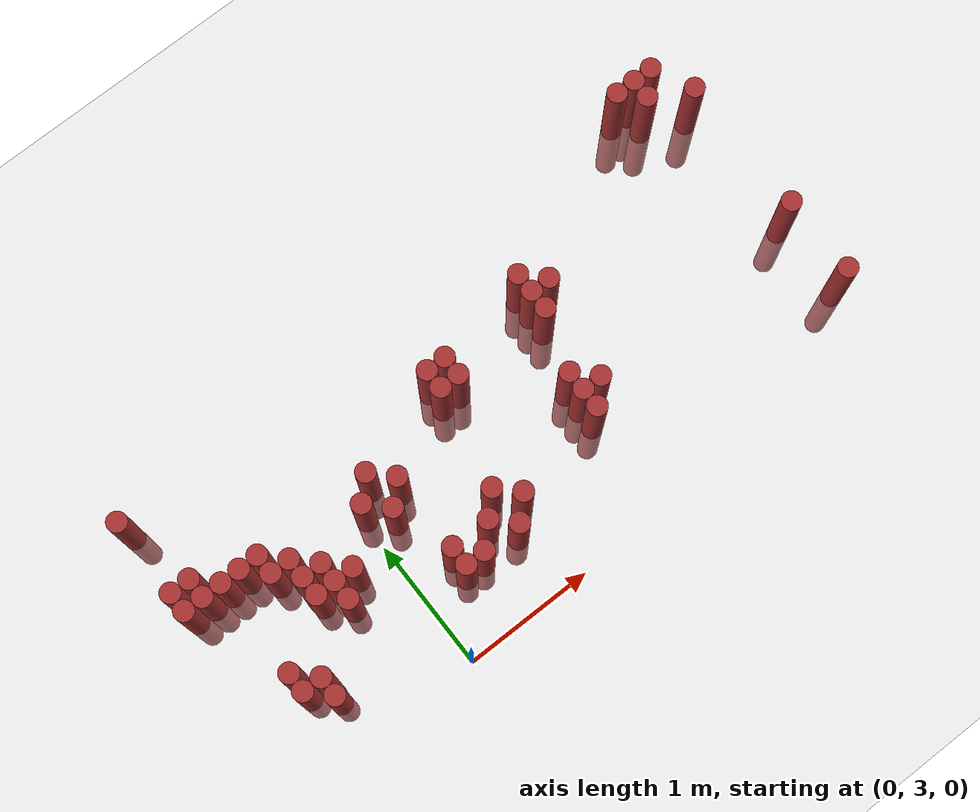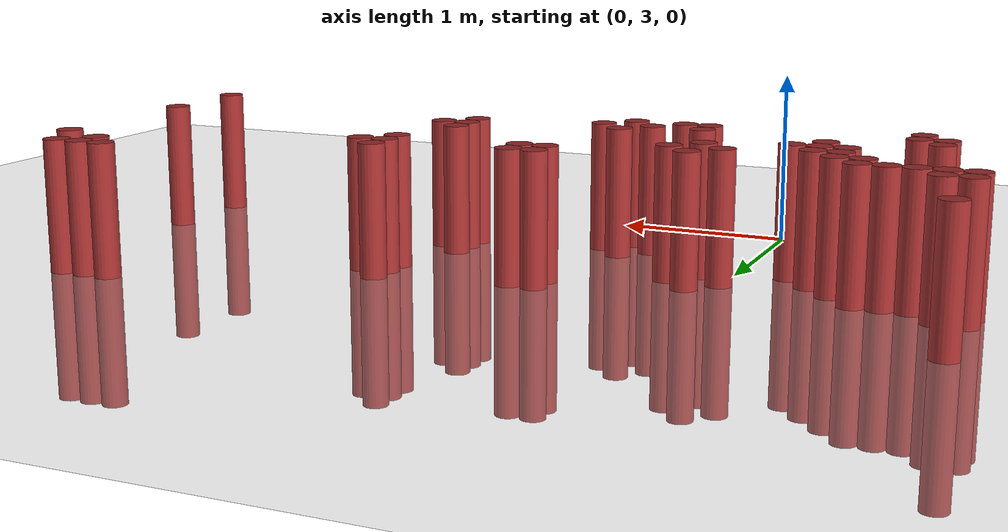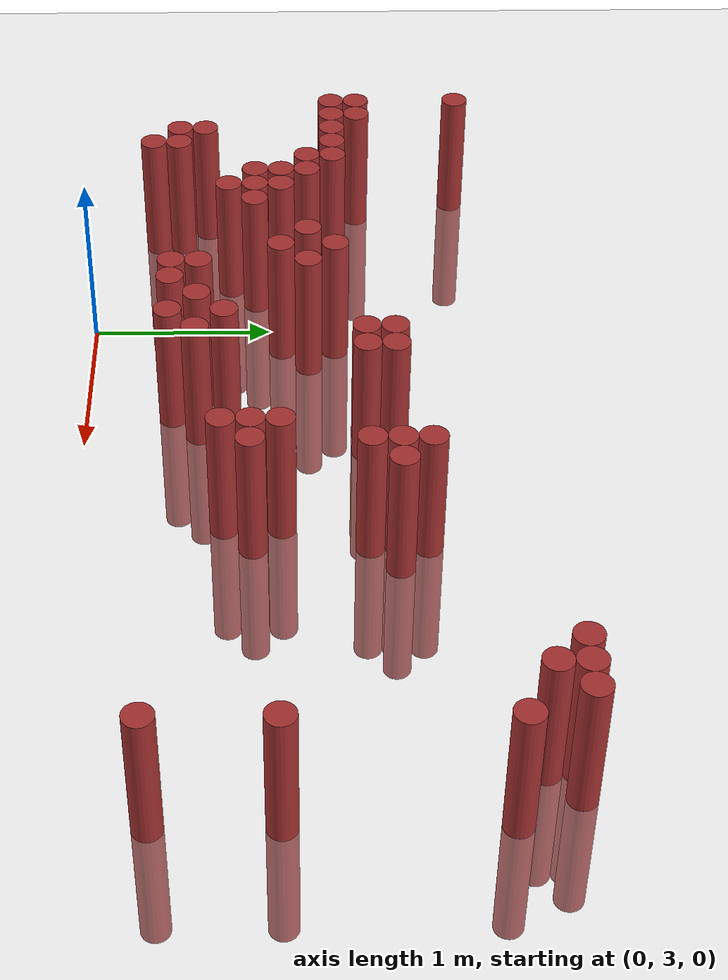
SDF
<sdf version="1.6">
 <world name="default">
  <model name="ground_plane">
   <static>1</static>
   <link name="link">
    <collision name="collision">
     <geometry><plane><normal>0 0 1</normal><size>100 100</size></plane></geometry>
     <surface><friction><ode><mu>100</mu><mu2>50</mu2></ode></friction></surface>
    </collision>
    <visual name="visual">
     <cast_shadows>0</cast_shadows>
     <geometry><plane><normal>0 0 1</normal><size>100 100</size></plane></geometry>
     <material>
      <script><uri>file://media/materials/scripts/gazebo.material</uri><name>Gazebo/Grey</name></script>
     </material>
    </visual>
   </link>
  </model>
  <model name="unit_cylinder_319">
   <static>1</static>
   <pose>-1.325000 4.375000 0.000000 0.000000 0.000000 0.000000</pose>
   <link name="link">
    <inertial>
     <mass>1</mass>
     <inertia><ixx>0.145833</ixx><ixy>0</ixy><ixz>0</ixz><iyy>0.145833</iyy><iyz>0</iyz><izz>0.125</izz></inertia>
    </inertial>
    <collision name="collision">
     <geometry><cylinder><radius>0.075000</radius><length>1.5</length></cylinder></geometry>
    </collision>
    <visual name="visual">
     <geometry><cylinder><radius>0.075000</radius><length>1.5</length></cylinder></geometry>
     <material>
      <ambient>0.648000 0.192000 0.192000 1</ambient>
      <diffuse>0.648000 0.192000 0.192000 1</diffuse>
     </material>
     <material>
      <script><name>Gazebo/Grey</name><uri>file://media/materials/scripts/gazebo.material</uri></script>
     </material>
    </visual>
   </link>
  </model>
  <model name="unit_cylinder_320">
   <static>1</static>
   <pose>-1.325000 4.525000 0.000000 0.000000 0.000000 0.000000</pose>
   <link name="link">
    <inertial>
     <mass>1</mass>
     <inertia><ixx>0.145833</ixx><ixy>0</ixy><ixz>0</ixz><iyy>0.145833</iyy><iyz>0</iyz><izz>0.125</izz></inertia>
    </inertial>
    <collision name="collision">
     <geometry><cylinder><radius>0.075000</radius><length>1.5</length></cylinder></geometry>
    </collision>
    <visual name="visual">
     <geometry><cylinder><radius>0.075000</radius><length>1.5</length></cylinder></geometry>
     <material>
      <ambient>0.648000 0.192000 0.192000 1</ambient>
      <diffuse>0.648000 0.192000 0.192000 1</diffuse>
     </material>
     <material>
      <script><name>Gazebo/Grey</name><uri>file://media/materials/scripts/gazebo.material</uri></script>
     </material>
    </visual>
   </link>
  </model>
  <model name="unit_cylinder_321">
   <static>1</static>
   <pose>-1.325000 5.125000 0.000000 0.000000 0.000000 0.000000</pose>
   <link name="link">
    <inertial>
     <mass>1</mass>
     <inertia><ixx>0.145833</ixx><ixy>0</ixy><ixz>0</ixz><iyy>0.145833</iyy><iyz>0</iyz><izz>0.125</izz></inertia>
    </inertial>
    <collision name="collision">
     <geometry><cylinder><radius>0.075000</radius><length>1.5</length></cylinder></geometry>
    </collision>
    <visual name="visual">
     <geometry><cylinder><radius>0.075000</radius><length>1.5</length></cylinder></geometry>
     <material>
      <ambient>0.648000 0.192000 0.192000 1</ambient>
      <diffuse>0.648000 0.192000 0.192000 1</diffuse>
     </material>
     <material>
      <script><name>Gazebo/Grey</name><uri>file://media/materials/scripts/gazebo.material</uri></script>
     </material>
    </visual>
   </link>
  </model>
  <model name="unit_cylinder_322">
   <static>1</static>
   <pose>-1.175000 4.375000 0.000000 0.000000 0.000000 0.000000</pose>
   <link name="link">
    <inertial>
     <mass>1</mass>
     <inertia><ixx>0.145833</ixx><ixy>0</ixy><ixz>0</ixz><iyy>0.145833</iyy><iyz>0</iyz><izz>0.125</izz></inertia>
    </inertial>
    <collision name="collision">
     <geometry><cylinder><radius>0.075000</radius><length>1.5</length></cylinder></geometry>
    </collision>
    <visual name="visual">
     <geometry><cylinder><radius>0.075000</radius><length>1.5</length></cylinder></geometry>
     <material>
      <ambient>0.648000 0.192000 0.192000 1</ambient>
      <diffuse>0.648000 0.192000 0.192000 1</diffuse>
     </material>
     <material>
      <script><name>Gazebo/Grey</name><uri>file://media/materials/scripts/gazebo.material</uri></script>
     </material>
    </visual>
   </link>
  </model>
  <model name="unit_cylinder_323">
   <static>1</static>
   <pose>-1.175000 4.525000 0.000000 0.000000 0.000000 0.000000</pose>
   <link name="link">
    <inertial>
     <mass>1</mass>
     <inertia><ixx>0.145833</ixx><ixy>0</ixy><ixz>0</ixz><iyy>0.145833</iyy><iyz>0</iyz><izz>0.125</izz></inertia>
    </inertial>
    <collision name="collision">
     <geometry><cylinder><radius>0.075000</radius><length>1.5</length></cylinder></geometry>
    </collision>
    <visual name="visual">
     <geometry><cylinder><radius>0.075000</radius><length>1.5</length></cylinder></geometry>
     <material>
      <ambient>0.648000 0.192000 0.192000 1</ambient>
      <diffuse>0.648000 0.192000 0.192000 1</diffuse>
     </material>
     <material>
      <script><name>Gazebo/Grey</name><uri>file://media/materials/scripts/gazebo.material</uri></script>
     </material>
    </visual>
   </link>
  </model>
  <model name="unit_cylinder_324">
   <static>1</static>
   <pose>-1.025000 3.475000 0.000000 0.000000 0.000000 0.000000</pose>
   <link name="link">
    <inertial>
     <mass>1</mass>
     <inertia><ixx>0.145833</ixx><ixy>0</ixy><ixz>0</ixz><iyy>0.145833</iyy><iyz>0</iyz><izz>0.125</izz></inertia>
    </inertial>
    <collision name="collision">
     <geometry><cylinder><radius>0.075000</radius><length>1.5</length></cylinder></geometry>
    </collision>
    <visual name="visual">
     <geometry><cylinder><radius>0.075000</radius><length>1.5</length></cylinder></geometry>
     <material>
      <ambient>0.648000 0.192000 0.192000 1</ambient>
      <diffuse>0.648000 0.192000 0.192000 1</diffuse>
     </material>
     <material>
      <script><name>Gazebo/Grey</name><uri>file://media/materials/scripts/gazebo.material</uri></script>
     </material>
    </visual>
   </link>
  </model>
  <model name="unit_cylinder_325">
   <static>1</static>
   <pose>-1.025000 3.625000 0.000000 0.000000 0.000000 0.000000</pose>
   <link name="link">
    <inertial>
     <mass>1</mass>
     <inertia><ixx>0.145833</ixx><ixy>0</ixy><ixz>0</ixz><iyy>0.145833</iyy><iyz>0</iyz><izz>0.125</izz></inertia>
    </inertial>
    <collision name="collision">
     <geometry><cylinder><radius>0.075000</radius><length>1.5</length></cylinder></geometry>
    </collision>
    <visual name="visual">
     <geometry><cylinder><radius>0.075000</radius><length>1.5</length></cylinder></geometry>
     <material>
      <ambient>0.648000 0.192000 0.192000 1</ambient>
      <diffuse>0.648000 0.192000 0.192000 1</diffuse>
     </material>
     <material>
      <script><name>Gazebo/Grey</name><uri>file://media/materials/scripts/gazebo.material</uri></script>
     </material>
    </visual>
   </link>
  </model>
  <model name="unit_cylinder_326">
   <static>1</static>
   <pose>-1.025000 4.375000 0.000000 0.000000 0.000000 0.000000</pose>
   <link name="link">
    <inertial>
     <mass>1</mass>
     <inertia><ixx>0.145833</ixx><ixy>0</ixy><ixz>0</ixz><iyy>0.145833</iyy><iyz>0</iyz><izz>0.125</izz></inertia>
    </inertial>
    <collision name="collision">
     <geometry><cylinder><radius>0.075000</radius><length>1.5</length></cylinder></geometry>
    </collision>
    <visual name="visual">
     <geometry><cylinder><radius>0.075000</radius><length>1.5</length></cylinder></geometry>
     <material>
      <ambient>0.648000 0.192000 0.192000 1</ambient>
      <diffuse>0.648000 0.192000 0.192000 1</diffuse>
     </material>
     <material>
      <script><name>Gazebo/Grey</name><uri>file://media/materials/scripts/gazebo.material</uri></script>
     </material>
    </visual>
   </link>
  </model>
  <model name="unit_cylinder_327">
   <static>1</static>
   <pose>-0.875000 3.325000 0.000000 0.000000 0.000000 0.000000</pose>
   <link name="link">
    <inertial>
     <mass>1</mass>
     <inertia><ixx>0.145833</ixx><ixy>0</ixy><ixz>0</ixz><iyy>0.145833</iyy><iyz>0</iyz><izz>0.125</izz></inertia>
    </inertial>
    <collision name="collision">
     <geometry><cylinder><radius>0.075000</radius><length>1.5</length></cylinder></geometry>
    </collision>
    <visual name="visual">
     <geometry><cylinder><radius>0.075000</radius><length>1.5</length></cylinder></geometry>
     <material>
      <ambient>0.648000 0.192000 0.192000 1</ambient>
      <diffuse>0.648000 0.192000 0.192000 1</diffuse>
     </material>
     <material>
      <script><name>Gazebo/Grey</name><uri>file://media/materials/scripts/gazebo.material</uri></script>
     </material>
    </visual>
   </link>
  </model>
  <model name="unit_cylinder_328">
   <static>1</static>
   <pose>-0.875000 3.475000 0.000000 0.000000 0.000000 0.000000</pose>
   <link name="link">
    <inertial>
     <mass>1</mass>
     <inertia><ixx>0.145833</ixx><ixy>0</ixy><ixz>0</ixz><iyy>0.145833</iyy><iyz>0</iyz><izz>0.125</izz></inertia>
    </inertial>
    <collision name="collision">
     <geometry><cylinder><radius>0.075000</radius><length>1.5</length></cylinder></geometry>
    </collision>
    <visual name="visual">
     <geometry><cylinder><radius>0.075000</radius><length>1.5</length></cylinder></geometry>
     <material>
      <ambient>0.648000 0.192000 0.192000 1</ambient>
      <diffuse>0.648000 0.192000 0.192000 1</diffuse>
     </material>
     <material>
      <script><name>Gazebo/Grey</name><uri>file://media/materials/scripts/gazebo.material</uri></script>
     </material>
    </visual>
   </link>
  </model>
  <model name="unit_cylinder_329">
   <static>1</static>
   <pose>-0.875000 4.375000 0.000000 0.000000 0.000000 0.000000</pose>
   <link name="link">
    <inertial>
     <mass>1</mass>
     <inertia><ixx>0.145833</ixx><ixy>0</ixy><ixz>0</ixz><iyy>0.145833</iyy><iyz>0</iyz><izz>0.125</izz></inertia>
    </inertial>
    <collision name="collision">
     <geometry><cylinder><radius>0.075000</radius><length>1.5</length></cylinder></geometry>
    </collision>
    <visual name="visual">
     <geometry><cylinder><radius>0.075000</radius><length>1.5</length></cylinder></geometry>
     <material>
      <ambient>0.648000 0.192000 0.192000 1</ambient>
      <diffuse>0.648000 0.192000 0.192000 1</diffuse>
     </material>
     <material>
      <script><name>Gazebo/Grey</name><uri>file://media/materials/scripts/gazebo.material</uri></script>
     </material>
    </visual>
   </link>
  </model>
  <model name="unit_cylinder_330">
   <static>1</static>
   <pose>-0.725000 4.225000 0.000000 0.000000 0.000000 0.000000</pose>
   <link name="link">
    <inertial>
     <mass>1</mass>
     <inertia><ixx>0.145833</ixx><ixy>0</ixy><ixz>0</ixz><iyy>0.145833</iyy><iyz>0</iyz><izz>0.125</izz></inertia>
    </inertial>
    <collision name="collision">
     <geometry><cylinder><radius>0.075000</radius><length>1.5</length></cylinder></geometry>
    </collision>
    <visual name="visual">
     <geometry><cylinder><radius>0.075000</radius><length>1.5</length></cylinder></geometry>
     <material>
      <ambient>0.648000 0.192000 0.192000 1</ambient>
      <diffuse>0.648000 0.192000 0.192000 1</diffuse>
     </material>
     <material>
      <script><name>Gazebo/Grey</name><uri>file://media/materials/scripts/gazebo.material</uri></script>
     </material>
    </visual>
   </link>
  </model>
  <model name="unit_cylinder_331">
   <static>1</static>
   <pose>-0.725000 4.375000 0.000000 0.000000 0.000000 0.000000</pose>
   <link name="link">
    <inertial>
     <mass>1</mass>
     <inertia><ixx>0.145833</ixx><ixy>0</ixy><ixz>0</ixz><iyy>0.145833</iyy><iyz>0</iyz><izz>0.125</izz></inertia>
    </inertial>
    <collision name="collision">
     <geometry><cylinder><radius>0.075000</radius><length>1.5</length></cylinder></geometry>
    </collision>
    <visual name="visual">
     <geometry><cylinder><radius>0.075000</radius><length>1.5</length></cylinder></geometry>
     <material>
      <ambient>0.648000 0.192000 0.192000 1</ambient>
      <diffuse>0.648000 0.192000 0.192000 1</diffuse>
     </material>
     <material>
      <script><name>Gazebo/Grey</name><uri>file://media/materials/scripts/gazebo.material</uri></script>
     </material>
    </visual>
   </link>
  </model>
  <model name="unit_cylinder_333">
   <static>1</static>
   <pose>-0.575000 3.925000 0.000000 0.000000 0.000000 0.000000</pose>
   <link name="link">
    <inertial>
     <mass>1</mass>
     <inertia><ixx>0.145833</ixx><ixy>0</ixy><ixz>0</ixz><iyy>0.145833</iyy><iyz>0</iyz><izz>0.125</izz></inertia>
    </inertial>
    <collision name="collision">
     <geometry><cylinder><radius>0.075000</radius><length>1.5</length></cylinder></geometry>
    </collision>
    <visual name="visual">
     <geometry><cylinder><radius>0.075000</radius><length>1.5</length></cylinder></geometry>
     <material>
      <ambient>0.648000 0.192000 0.192000 1</ambient>
      <diffuse>0.648000 0.192000 0.192000 1</diffuse>
     </material>
     <material>
      <script><name>Gazebo/Grey</name><uri>file://media/materials/scripts/gazebo.material</uri></script>
     </material>
    </visual>
   </link>
  </model>
  <model name="unit_cylinder_334">
   <static>1</static>
   <pose>-0.575000 4.075000 0.000000 0.000000 0.000000 0.000000</pose>
   <link name="link">
    <inertial>
     <mass>1</mass>
     <inertia><ixx>0.145833</ixx><ixy>0</ixy><ixz>0</ixz><iyy>0.145833</iyy><iyz>0</iyz><izz>0.125</izz></inertia>
    </inertial>
    <collision name="collision">
     <geometry><cylinder><radius>0.075000</radius><length>1.5</length></cylinder></geometry>
    </collision>
    <visual name="visual">
     <geometry><cylinder><radius>0.075000</radius><length>1.5</length></cylinder></geometry>
     <material>
      <ambient>0.648000 0.192000 0.192000 1</ambient>
      <diffuse>0.648000 0.192000 0.192000 1</diffuse>
     </material>
     <material>
      <script><name>Gazebo/Grey</name><uri>file://media/materials/scripts/gazebo.material</uri></script>
     </material>
    </visual>
   </link>
  </model>
  <model name="unit_cylinder_335">
   <static>1</static>
   <pose>-0.575000 4.225000 0.000000 0.000000 0.000000 0.000000</pose>
   <link name="link">
    <inertial>
     <mass>1</mass>
     <inertia><ixx>0.145833</ixx><ixy>0</ixy><ixz>0</ixz><iyy>0.145833</iyy><iyz>0</iyz><izz>0.125</izz></inertia>
    </inertial>
    <collision name="collision">
     <geometry><cylinder><radius>0.075000</radius><length>1.5</length></cylinder></geometry>
    </collision>
    <visual name="visual">
     <geometry><cylinder><radius>0.075000</radius><length>1.5</length></cylinder></geometry>
     <material>
      <ambient>0.648000 0.192000 0.192000 1</ambient>
      <diffuse>0.648000 0.192000 0.192000 1</diffuse>
     </material>
     <material>
      <script><name>Gazebo/Grey</name><uri>file://media/materials/scripts/gazebo.material</uri></script>
     </material>
    </visual>
   </link>
  </model>
  <model name="unit_cylinder_340">
   <static>1</static>
   <pose>-0.425000 3.775000 0.000000 0.000000 0.000000 0.000000</pose>
   <link name="link">
    <inertial>
     <mass>1</mass>
     <inertia><ixx>0.145833</ixx><ixy>0</ixy><ixz>0</ixz><iyy>0.145833</iyy><iyz>0</iyz><izz>0.125</izz></inertia>
    </inertial>
    <collision name="collision">
     <geometry><cylinder><radius>0.075000</radius><length>1.5</length></cylinder></geometry>
    </collision>
    <visual name="visual">
     <geometry><cylinder><radius>0.075000</radius><length>1.5</length></cylinder></geometry>
     <material>
      <ambient>0.648000 0.192000 0.192000 1</ambient>
      <diffuse>0.648000 0.192000 0.192000 1</diffuse>
     </material>
     <material>
      <script><name>Gazebo/Grey</name><uri>file://media/materials/scripts/gazebo.material</uri></script>
     </material>
    </visual>
   </link>
  </model>
  <model name="unit_cylinder_341">
   <static>1</static>
   <pose>-0.425000 3.925000 0.000000 0.000000 0.000000 0.000000</pose>
   <link name="link">
    <inertial>
     <mass>1</mass>
     <inertia><ixx>0.145833</ixx><ixy>0</ixy><ixz>0</ixz><iyy>0.145833</iyy><iyz>0</iyz><izz>0.125</izz></inertia>
    </inertial>
    <collision name="collision">
     <geometry><cylinder><radius>0.075000</radius><length>1.5</length></cylinder></geometry>
    </collision>
    <visual name="visual">
     <geometry><cylinder><radius>0.075000</radius><length>1.5</length></cylinder></geometry>
     <material>
      <ambient>0.648000 0.192000 0.192000 1</ambient>
      <diffuse>0.648000 0.192000 0.192000 1</diffuse>
     </material>
     <material>
      <script><name>Gazebo/Grey</name><uri>file://media/materials/scripts/gazebo.material</uri></script>
     </material>
    </visual>
   </link>
  </model>
  <model name="unit_cylinder_342">
   <static>1</static>
   <pose>-0.425000 4.075000 0.000000 0.000000 0.000000 0.000000</pose>
   <link name="link">
    <inertial>
     <mass>1</mass>
     <inertia><ixx>0.145833</ixx><ixy>0</ixy><ixz>0</ixz><iyy>0.145833</iyy><iyz>0</iyz><izz>0.125</izz></inertia>
    </inertial>
    <collision name="collision">
     <geometry><cylinder><radius>0.075000</radius><length>1.5</length></cylinder></geometry>
    </collision>
    <visual name="visual">
     <geometry><cylinder><radius>0.075000</radius><length>1.5</length></cylinder></geometry>
     <material>
      <ambient>0.648000 0.192000 0.192000 1</ambient>
      <diffuse>0.648000 0.192000 0.192000 1</diffuse>
     </material>
     <material>
      <script><name>Gazebo/Grey</name><uri>file://media/materials/scripts/gazebo.material</uri></script>
     </material>
    </visual>
   </link>
  </model>
  <model name="unit_cylinder_347">
   <static>1</static>
   <pose>-0.275000 3.925000 0.000000 0.000000 0.000000 0.000000</pose>
   <link name="link">
    <inertial>
     <mass>1</mass>
     <inertia><ixx>0.145833</ixx><ixy>0</ixy><ixz>0</ixz><iyy>0.145833</iyy><iyz>0</iyz><izz>0.125</izz></inertia>
    </inertial>
    <collision name="collision">
     <geometry><cylinder><radius>0.075000</radius><length>1.5</length></cylinder></geometry>
    </collision>
    <visual name="visual">
     <geometry><cylinder><radius>0.075000</radius><length>1.5</length></cylinder></geometry>
     <material>
      <ambient>0.648000 0.192000 0.192000 1</ambient>
      <diffuse>0.648000 0.192000 0.192000 1</diffuse>
     </material>
     <material>
      <script><name>Gazebo/Grey</name><uri>file://media/materials/scripts/gazebo.material</uri></script>
     </material>
    </visual>
   </link>
  </model>
  <model name="unit_cylinder_357">
   <static>1</static>
   <pose>0.025000 4.225000 0.000000 0.000000 0.000000 0.000000</pose>
   <link name="link">
    <inertial>
     <mass>1</mass>
     <inertia><ixx>0.145833</ixx><ixy>0</ixy><ixz>0</ixz><iyy>0.145833</iyy><iyz>0</iyz><izz>0.125</izz></inertia>
    </inertial>
    <collision name="collision">
     <geometry><cylinder><radius>0.075000</radius><length>1.5</length></cylinder></geometry>
    </collision>
    <visual name="visual">
     <geometry><cylinder><radius>0.075000</radius><length>1.5</length></cylinder></geometry>
     <material>
      <ambient>0.648000 0.192000 0.192000 1</ambient>
      <diffuse>0.648000 0.192000 0.192000 1</diffuse>
     </material>
     <material>
      <script><name>Gazebo/Grey</name><uri>file://media/materials/scripts/gazebo.material</uri></script>
     </material>
    </visual>
   </link>
  </model>
  <model name="unit_cylinder_360">
   <static>1</static>
   <pose>0.175000 4.075000 0.000000 0.000000 0.000000 0.000000</pose>
   <link name="link">
    <inertial>
     <mass>1</mass>
     <inertia><ixx>0.145833</ixx><ixy>0</ixy><ixz>0</ixz><iyy>0.145833</iyy><iyz>0</iyz><izz>0.125</izz></inertia>
    </inertial>
    <collision name="collision">
     <geometry><cylinder><radius>0.075000</radius><length>1.5</length></cylinder></geometry>
    </collision>
    <visual name="visual">
     <geometry><cylinder><radius>0.075000</radius><length>1.5</length></cylinder></geometry>
     <material>
      <ambient>0.648000 0.192000 0.192000 1</ambient>
      <diffuse>0.648000 0.192000 0.192000 1</diffuse>
     </material>
     <material>
      <script><name>Gazebo/Grey</name><uri>file://media/materials/scripts/gazebo.material</uri></script>
     </material>
    </visual>
   </link>
  </model>
  <model name="unit_cylinder_361">
   <static>1</static>
   <pose>0.175000 4.375000 0.000000 0.000000 0.000000 0.000000</pose>
   <link name="link">
    <inertial>
     <mass>1</mass>
     <inertia><ixx>0.145833</ixx><ixy>0</ixy><ixz>0</ixz><iyy>0.145833</iyy><iyz>0</iyz><izz>0.125</izz></inertia>
    </inertial>
    <collision name="collision">
     <geometry><cylinder><radius>0.075000</radius><length>1.5</length></cylinder></geometry>
    </collision>
    <visual name="visual">
     <geometry><cylinder><radius>0.075000</radius><length>1.5</length></cylinder></geometry>
     <material>
      <ambient>0.648000 0.192000 0.192000 1</ambient>
      <diffuse>0.648000 0.192000 0.192000 1</diffuse>
     </material>
     <material>
      <script><name>Gazebo/Grey</name><uri>file://media/materials/scripts/gazebo.material</uri></script>
     </material>
    </visual>
   </link>
  </model>
  <model name="unit_cylinder_364">
   <static>1</static>
   <pose>0.325000 3.475000 0.000000 0.000000 0.000000 0.000000</pose>
   <link name="link">
    <inertial>
     <mass>1</mass>
     <inertia><ixx>0.145833</ixx><ixy>0</ixy><ixz>0</ixz><iyy>0.145833</iyy><iyz>0</iyz><izz>0.125</izz></inertia>
    </inertial>
    <collision name="collision">
     <geometry><cylinder><radius>0.075000</radius><length>1.5</length></cylinder></geometry>
    </collision>
    <visual name="visual">
     <geometry><cylinder><radius>0.075000</radius><length>1.5</length></cylinder></geometry>
     <material>
      <ambient>0.648000 0.192000 0.192000 1</ambient>
      <diffuse>0.648000 0.192000 0.192000 1</diffuse>
     </material>
     <material>
      <script><name>Gazebo/Grey</name><uri>file://media/materials/scripts/gazebo.material</uri></script>
     </material>
    </visual>
   </link>
  </model>
  <model name="unit_cylinder_365">
   <static>1</static>
   <pose>0.325000 3.625000 0.000000 0.000000 0.000000 0.000000</pose>
   <link name="link">
    <inertial>
     <mass>1</mass>
     <inertia><ixx>0.145833</ixx><ixy>0</ixy><ixz>0</ixz><iyy>0.145833</iyy><iyz>0</iyz><izz>0.125</izz></inertia>
    </inertial>
    <collision name="collision">
     <geometry><cylinder><radius>0.075000</radius><length>1.5</length></cylinder></geometry>
    </collision>
    <visual name="visual">
     <geometry><cylinder><radius>0.075000</radius><length>1.5</length></cylinder></geometry>
     <material>
      <ambient>0.648000 0.192000 0.192000 1</ambient>
      <diffuse>0.648000 0.192000 0.192000 1</diffuse>
     </material>
     <material>
      <script><name>Gazebo/Grey</name><uri>file://media/materials/scripts/gazebo.material</uri></script>
     </material>
    </visual>
   </link>
  </model>
  <model name="unit_cylinder_366">
   <static>1</static>
   <pose>0.325000 4.225000 0.000000 0.000000 0.000000 0.000000</pose>
   <link name="link">
    <inertial>
     <mass>1</mass>
     <inertia><ixx>0.145833</ixx><ixy>0</ixy><ixz>0</ixz><iyy>0.145833</iyy><iyz>0</iyz><izz>0.125</izz></inertia>
    </inertial>
    <collision name="collision">
     <geometry><cylinder><radius>0.075000</radius><length>1.5</length></cylinder></geometry>
    </collision>
    <visual name="visual">
     <geometry><cylinder><radius>0.075000</radius><length>1.5</length></cylinder></geometry>
     <material>
      <ambient>0.648000 0.192000 0.192000 1</ambient>
      <diffuse>0.648000 0.192000 0.192000 1</diffuse>
     </material>
     <material>
      <script><name>Gazebo/Grey</name><uri>file://media/materials/scripts/gazebo.material</uri></script>
     </material>
    </visual>
   </link>
  </model>
  <model name="unit_cylinder_370">
   <static>1</static>
   <pose>0.475000 3.475000 0.000000 0.000000 0.000000 0.000000</pose>
   <link name="link">
    <inertial>
     <mass>1</mass>
     <inertia><ixx>0.145833</ixx><ixy>0</ixy><ixz>0</ixz><iyy>0.145833</iyy><iyz>0</iyz><izz>0.125</izz></inertia>
    </inertial>
    <collision name="collision">
     <geometry><cylinder><radius>0.075000</radius><length>1.5</length></cylinder></geometry>
    </collision>
    <visual name="visual">
     <geometry><cylinder><radius>0.075000</radius><length>1.5</length></cylinder></geometry>
     <material>
      <ambient>0.648000 0.192000 0.192000 1</ambient>
      <diffuse>0.648000 0.192000 0.192000 1</diffuse>
     </material>
     <material>
      <script><name>Gazebo/Grey</name><uri>file://media/materials/scripts/gazebo.material</uri></script>
     </material>
    </visual>
   </link>
  </model>
  <model name="unit_cylinder_374">
   <static>1</static>
   <pose>0.625000 3.625000 0.000000 0.000000 0.000000 0.000000</pose>
   <link name="link">
    <inertial>
     <mass>1</mass>
     <inertia><ixx>0.145833</ixx><ixy>0</ixy><ixz>0</ixz><iyy>0.145833</iyy><iyz>0</iyz><izz>0.125</izz></inertia>
    </inertial>
    <collision name="collision">
     <geometry><cylinder><radius>0.075000</radius><length>1.5</length></cylinder></geometry>
    </collision>
    <visual name="visual">
     <geometry><cylinder><radius>0.075000</radius><length>1.5</length></cylinder></geometry>
     <material>
      <ambient>0.648000 0.192000 0.192000 1</ambient>
      <diffuse>0.648000 0.192000 0.192000 1</diffuse>
     </material>
     <material>
      <script><name>Gazebo/Grey</name><uri>file://media/materials/scripts/gazebo.material</uri></script>
     </material>
    </visual>
   </link>
  </model>
  <model name="unit_cylinder_376">
   <static>1</static>
   <pose>0.775000 3.475000 0.000000 0.000000 0.000000 0.000000</pose>
   <link name="link">
    <inertial>
     <mass>1</mass>
     <inertia><ixx>0.145833</ixx><ixy>0</ixy><ixz>0</ixz><iyy>0.145833</iyy><iyz>0</iyz><izz>0.125</izz></inertia>
    </inertial>
    <collision name="collision">
     <geometry><cylinder><radius>0.075000</radius><length>1.5</length></cylinder></geometry>
    </collision>
    <visual name="visual">
     <geometry><cylinder><radius>0.075000</radius><length>1.5</length></cylinder></geometry>
     <material>
      <ambient>0.648000 0.192000 0.192000 1</ambient>
      <diffuse>0.648000 0.192000 0.192000 1</diffuse>
     </material>
     <material>
      <script><name>Gazebo/Grey</name><uri>file://media/materials/scripts/gazebo.material</uri></script>
     </material>
    </visual>
   </link>
  </model>
  <model name="unit_cylinder_377">
   <static>1</static>
   <pose>0.775000 3.775000 0.000000 0.000000 0.000000 0.000000</pose>
   <link name="link">
    <inertial>
     <mass>1</mass>
     <inertia><ixx>0.145833</ixx><ixy>0</ixy><ixz>0</ixz><iyy>0.145833</iyy><iyz>0</iyz><izz>0.125</izz></inertia>
    </inertial>
    <collision name="collision">
     <geometry><cylinder><radius>0.075000</radius><length>1.5</length></cylinder></geometry>
    </collision>
    <visual name="visual">
     <geometry><cylinder><radius>0.075000</radius><length>1.5</length></cylinder></geometry>
     <material>
      <ambient>0.648000 0.192000 0.192000 1</ambient>
      <diffuse>0.648000 0.192000 0.192000 1</diffuse>
     </material>
     <material>
      <script><name>Gazebo/Grey</name><uri>file://media/materials/scripts/gazebo.material</uri></script>
     </material>
    </visual>
   </link>
  </model>
  <model name="unit_cylinder_380">
   <static>1</static>
   <pose>0.925000 3.625000 0.000000 0.000000 0.000000 0.000000</pose>
   <link name="link">
    <inertial>
     <mass>1</mass>
     <inertia><ixx>0.145833</ixx><ixy>0</ixy><ixz>0</ixz><iyy>0.145833</iyy><iyz>0</iyz><izz>0.125</izz></inertia>
    </inertial>
    <collision name="collision">
     <geometry><cylinder><radius>0.075000</radius><length>1.5</length></cylinder></geometry>
    </collision>
    <visual name="visual">
     <geometry><cylinder><radius>0.075000</radius><length>1.5</length></cylinder></geometry>
     <material>
      <ambient>0.648000 0.192000 0.192000 1</ambient>
      <diffuse>0.648000 0.192000 0.192000 1</diffuse>
     </material>
     <material>
      <script><name>Gazebo/Grey</name><uri>file://media/materials/scripts/gazebo.material</uri></script>
     </material>
    </visual>
   </link>
  </model>
  <model name="unit_cylinder_381">
   <static>1</static>
   <pose>0.925000 4.525000 0.000000 0.000000 0.000000 0.000000</pose>
   <link name="link">
    <inertial>
     <mass>1</mass>
     <inertia><ixx>0.145833</ixx><ixy>0</ixy><ixz>0</ixz><iyy>0.145833</iyy><iyz>0</iyz><izz>0.125</izz></inertia>
    </inertial>
    <collision name="collision">
     <geometry><cylinder><radius>0.075000</radius><length>1.5</length></cylinder></geometry>
    </collision>
    <visual name="visual">
     <geometry><cylinder><radius>0.075000</radius><length>1.5</length></cylinder></geometry>
     <material>
      <ambient>0.648000 0.192000 0.192000 1</ambient>
      <diffuse>0.648000 0.192000 0.192000 1</diffuse>
     </material>
     <material>
      <script><name>Gazebo/Grey</name><uri>file://media/materials/scripts/gazebo.material</uri></script>
     </material>
    </visual>
   </link>
  </model>
  <model name="unit_cylinder_382">
   <static>1</static>
   <pose>0.925000 4.675000 0.000000 0.000000 0.000000 0.000000</pose>
   <link name="link">
    <inertial>
     <mass>1</mass>
     <inertia><ixx>0.145833</ixx><ixy>0</ixy><ixz>0</ixz><iyy>0.145833</iyy><iyz>0</iyz><izz>0.125</izz></inertia>
    </inertial>
    <collision name="collision">
     <geometry><cylinder><radius>0.075000</radius><length>1.5</length></cylinder></geometry>
    </collision>
    <visual name="visual">
     <geometry><cylinder><radius>0.075000</radius><length>1.5</length></cylinder></geometry>
     <material>
      <ambient>0.648000 0.192000 0.192000 1</ambient>
      <diffuse>0.648000 0.192000 0.192000 1</diffuse>
     </material>
     <material>
      <script><name>Gazebo/Grey</name><uri>file://media/materials/scripts/gazebo.material</uri></script>
     </material>
    </visual>
   </link>
  </model>
  <model name="unit_cylinder_383">
   <static>1</static>
   <pose>1.075000 4.525000 0.000000 0.000000 0.000000 0.000000</pose>
   <link name="link">
    <inertial>
     <mass>1</mass>
     <inertia><ixx>0.145833</ixx><ixy>0</ixy><ixz>0</ixz><iyy>0.145833</iyy><iyz>0</iyz><izz>0.125</izz></inertia>
    </inertial>
    <collision name="collision">
     <geometry><cylinder><radius>0.075000</radius><length>1.5</length></cylinder></geometry>
    </collision>
    <visual name="visual">
     <geometry><cylinder><radius>0.075000</radius><length>1.5</length></cylinder></geometry>
     <material>
      <ambient>0.648000 0.192000 0.192000 1</ambient>
      <diffuse>0.648000 0.192000 0.192000 1</diffuse>
     </material>
     <material>
      <script><name>Gazebo/Grey</name><uri>file://media/materials/scripts/gazebo.material</uri></script>
     </material>
    </visual>
   </link>
  </model>
  <model name="unit_cylinder_384">
   <static>1</static>
   <pose>1.075000 4.675000 0.000000 0.000000 0.000000 0.000000</pose>
   <link name="link">
    <inertial>
     <mass>1</mass>
     <inertia><ixx>0.145833</ixx><ixy>0</ixy><ixz>0</ixz><iyy>0.145833</iyy><iyz>0</iyz><izz>0.125</izz></inertia>
    </inertial>
    <collision name="collision">
     <geometry><cylinder><radius>0.075000</radius><length>1.5</length></cylinder></geometry>
    </collision>
    <visual name="visual">
     <geometry><cylinder><radius>0.075000</radius><length>1.5</length></cylinder></geometry>
     <material>
      <ambient>0.648000 0.192000 0.192000 1</ambient>
      <diffuse>0.648000 0.192000 0.192000 1</diffuse>
     </material>
     <material>
      <script><name>Gazebo/Grey</name><uri>file://media/materials/scripts/gazebo.material</uri></script>
     </material>
    </visual>
   </link>
  </model>
  <model name="unit_cylinder_393">
   <static>1</static>
   <pose>1.675000 3.775000 0.000000 0.000000 0.000000 0.000000</pose>
   <link name="link">
    <inertial>
     <mass>1</mass>
     <inertia><ixx>0.145833</ixx><ixy>0</ixy><ixz>0</ixz><iyy>0.145833</iyy><iyz>0</iyz><izz>0.125</izz></inertia>
    </inertial>
    <collision name="collision">
     <geometry><cylinder><radius>0.075000</radius><length>1.5</length></cylinder></geometry>
    </collision>
    <visual name="visual">
     <geometry><cylinder><radius>0.075000</radius><length>1.5</length></cylinder></geometry>
     <material>
      <ambient>0.648000 0.192000 0.192000 1</ambient>
      <diffuse>0.648000 0.192000 0.192000 1</diffuse>
     </material>
     <material>
      <script><name>Gazebo/Grey</name><uri>file://media/materials/scripts/gazebo.material</uri></script>
     </material>
    </visual>
   </link>
  </model>
  <model name="unit_cylinder_394">
   <static>1</static>
   <pose>1.675000 3.925000 0.000000 0.000000 0.000000 0.000000</pose>
   <link name="link">
    <inertial>
     <mass>1</mass>
     <inertia><ixx>0.145833</ixx><ixy>0</ixy><ixz>0</ixz><iyy>0.145833</iyy><iyz>0</iyz><izz>0.125</izz></inertia>
    </inertial>
    <collision name="collision">
     <geometry><cylinder><radius>0.075000</radius><length>1.5</length></cylinder></geometry>
    </collision>
    <visual name="visual">
     <geometry><cylinder><radius>0.075000</radius><length>1.5</length></cylinder></geometry>
     <material>
      <ambient>0.648000 0.192000 0.192000 1</ambient>
      <diffuse>0.648000 0.192000 0.192000 1</diffuse>
     </material>
     <material>
      <script><name>Gazebo/Grey</name><uri>file://media/materials/scripts/gazebo.material</uri></script>
     </material>
    </visual>
   </link>
  </model>
  <model name="unit_cylinder_395">
   <static>1</static>
   <pose>1.675000 4.075000 0.000000 0.000000 0.000000 0.000000</pose>
   <link name="link">
    <inertial>
     <mass>1</mass>
     <inertia><ixx>0.145833</ixx><ixy>0</ixy><ixz>0</ixz><iyy>0.145833</iyy><iyz>0</iyz><izz>0.125</izz></inertia>
    </inertial>
    <collision name="collision">
     <geometry><cylinder><radius>0.075000</radius><length>1.5</length></cylinder></geometry>
    </collision>
    <visual name="visual">
     <geometry><cylinder><radius>0.075000</radius><length>1.5</length></cylinder></geometry>
     <material>
      <ambient>0.648000 0.192000 0.192000 1</ambient>
      <diffuse>0.648000 0.192000 0.192000 1</diffuse>
     </material>
     <material>
      <script><name>Gazebo/Grey</name><uri>file://media/materials/scripts/gazebo.material</uri></script>
     </material>
    </visual>
   </link>
  </model>
  <model name="unit_cylinder_397">
   <static>1</static>
   <pose>1.825000 3.925000 0.000000 0.000000 0.000000 0.000000</pose>
   <link name="link">
    <inertial>
     <mass>1</mass>
     <inertia><ixx>0.145833</ixx><ixy>0</ixy><ixz>0</ixz><iyy>0.145833</iyy><iyz>0</iyz><izz>0.125</izz></inertia>
    </inertial>
    <collision name="collision">
     <geometry><cylinder><radius>0.075000</radius><length>1.5</length></cylinder></geometry>
    </collision>
    <visual name="visual">
     <geometry><cylinder><radius>0.075000</radius><length>1.5</length></cylinder></geometry>
     <material>
      <ambient>0.648000 0.192000 0.192000 1</ambient>
      <diffuse>0.648000 0.192000 0.192000 1</diffuse>
     </material>
     <material>
      <script><name>Gazebo/Grey</name><uri>file://media/materials/scripts/gazebo.material</uri></script>
     </material>
    </visual>
   </link>
  </model>
  <model name="unit_cylinder_398">
   <static>1</static>
   <pose>1.825000 4.525000 0.000000 0.000000 0.000000 0.000000</pose>
   <link name="link">
    <inertial>
     <mass>1</mass>
     <inertia><ixx>0.145833</ixx><ixy>0</ixy><ixz>0</ixz><iyy>0.145833</iyy><iyz>0</iyz><izz>0.125</izz></inertia>
    </inertial>
    <collision name="collision">
     <geometry><cylinder><radius>0.075000</radius><length>1.5</length></cylinder></geometry>
    </collision>
    <visual name="visual">
     <geometry><cylinder><radius>0.075000</radius><length>1.5</length></cylinder></geometry>
     <material>
      <ambient>0.648000 0.192000 0.192000 1</ambient>
      <diffuse>0.648000 0.192000 0.192000 1</diffuse>
     </material>
     <material>
      <script><name>Gazebo/Grey</name><uri>file://media/materials/scripts/gazebo.material</uri></script>
     </material>
    </visual>
   </link>
  </model>
  <model name="unit_cylinder_399">
   <static>1</static>
   <pose>1.825000 4.675000 0.000000 0.000000 0.000000 0.000000</pose>
   <link name="link">
    <inertial>
     <mass>1</mass>
     <inertia><ixx>0.145833</ixx><ixy>0</ixy><ixz>0</ixz><iyy>0.145833</iyy><iyz>0</iyz><izz>0.125</izz></inertia>
    </inertial>
    <collision name="collision">
     <geometry><cylinder><radius>0.075000</radius><length>1.5</length></cylinder></geometry>
    </collision>
    <visual name="visual">
     <geometry><cylinder><radius>0.075000</radius><length>1.5</length></cylinder></geometry>
     <material>
      <ambient>0.648000 0.192000 0.192000 1</ambient>
      <diffuse>0.648000 0.192000 0.192000 1</diffuse>
     </material>
     <material>
      <script><name>Gazebo/Grey</name><uri>file://media/materials/scripts/gazebo.material</uri></script>
     </material>
    </visual>
   </link>
  </model>
  <model name="unit_cylinder_400">
   <static>1</static>
   <pose>1.825000 4.825000 0.000000 0.000000 0.000000 0.000000</pose>
   <link name="link">
    <inertial>
     <mass>1</mass>
     <inertia><ixx>0.145833</ixx><ixy>0</ixy><ixz>0</ixz><iyy>0.145833</iyy><iyz>0</iyz><izz>0.125</izz></inertia>
    </inertial>
    <collision name="collision">
     <geometry><cylinder><radius>0.075000</radius><length>1.5</length></cylinder></geometry>
    </collision>
    <visual name="visual">
     <geometry><cylinder><radius>0.075000</radius><length>1.5</length></cylinder></geometry>
     <material>
      <ambient>0.648000 0.192000 0.192000 1</ambient>
      <diffuse>0.648000 0.192000 0.192000 1</diffuse>
     </material>
     <material>
      <script><name>Gazebo/Grey</name><uri>file://media/materials/scripts/gazebo.material</uri></script>
     </material>
    </visual>
   </link>
  </model>
  <model name="unit_cylinder_401">
   <static>1</static>
   <pose>1.975000 4.675000 0.000000 0.000000 0.000000 0.000000</pose>
   <link name="link">
    <inertial>
     <mass>1</mass>
     <inertia><ixx>0.145833</ixx><ixy>0</ixy><ixz>0</ixz><iyy>0.145833</iyy><iyz>0</iyz><izz>0.125</izz></inertia>
    </inertial>
    <collision name="collision">
     <geometry><cylinder><radius>0.075000</radius><length>1.5</length></cylinder></geometry>
    </collision>
    <visual name="visual">
     <geometry><cylinder><radius>0.075000</radius><length>1.5</length></cylinder></geometry>
     <material>
      <ambient>0.648000 0.192000 0.192000 1</ambient>
      <diffuse>0.648000 0.192000 0.192000 1</diffuse>
     </material>
     <material>
      <script><name>Gazebo/Grey</name><uri>file://media/materials/scripts/gazebo.material</uri></script>
     </material>
    </visual>
   </link>
  </model>
  <model name="unit_cylinder_405">
   <static>1</static>
   <pose>3.175000 5.425000 0.000000 0.000000 0.000000 0.000000</pose>
   <link name="link">
    <inertial>
     <mass>1</mass>
     <inertia><ixx>0.145833</ixx><ixy>0</ixy><ixz>0</ixz><iyy>0.145833</iyy><iyz>0</iyz><izz>0.125</izz></inertia>
    </inertial>
    <collision name="collision">
     <geometry><cylinder><radius>0.075000</radius><length>1.5</length></cylinder></geometry>
    </collision>
    <visual name="visual">
     <geometry><cylinder><radius>0.075000</radius><length>1.5</length></cylinder></geometry>
     <material>
      <ambient>0.648000 0.192000 0.192000 1</ambient>
      <diffuse>0.648000 0.192000 0.192000 1</diffuse>
     </material>
     <material>
      <script><name>Gazebo/Grey</name><uri>file://media/materials/scripts/gazebo.material</uri></script>
     </material>
    </visual>
   </link>
  </model>
  <model name="unit_cylinder_409">
   <static>1</static>
   <pose>3.325000 5.275000 0.000000 0.000000 0.000000 0.000000</pose>
   <link name="link">
    <inertial>
     <mass>1</mass>
     <inertia><ixx>0.145833</ixx><ixy>0</ixy><ixz>0</ixz><iyy>0.145833</iyy><iyz>0</iyz><izz>0.125</izz></inertia>
    </inertial>
    <collision name="collision">
     <geometry><cylinder><radius>0.075000</radius><length>1.5</length></cylinder></geometry>
    </collision>
    <visual name="visual">
     <geometry><cylinder><radius>0.075000</radius><length>1.5</length></cylinder></geometry>
     <material>
      <ambient>0.648000 0.192000 0.192000 1</ambient>
      <diffuse>0.648000 0.192000 0.192000 1</diffuse>
     </material>
     <material>
      <script><name>Gazebo/Grey</name><uri>file://media/materials/scripts/gazebo.material</uri></script>
     </material>
    </visual>
   </link>
  </model>
  <model name="unit_cylinder_410">
   <static>1</static>
   <pose>3.325000 5.425000 0.000000 0.000000 0.000000 0.000000</pose>
   <link name="link">
    <inertial>
     <mass>1</mass>
     <inertia><ixx>0.145833</ixx><ixy>0</ixy><ixz>0</ixz><iyy>0.145833</iyy><iyz>0</iyz><izz>0.125</izz></inertia>
    </inertial>
    <collision name="collision">
     <geometry><cylinder><radius>0.075000</radius><length>1.5</length></cylinder></geometry>
    </collision>
    <visual name="visual">
     <geometry><cylinder><radius>0.075000</radius><length>1.5</length></cylinder></geometry>
     <material>
      <ambient>0.648000 0.192000 0.192000 1</ambient>
      <diffuse>0.648000 0.192000 0.192000 1</diffuse>
     </material>
     <material>
      <script><name>Gazebo/Grey</name><uri>file://media/materials/scripts/gazebo.material</uri></script>
     </material>
    </visual>
   </link>
  </model>
  <model name="unit_cylinder_412">
   <static>1</static>
   <pose>3.475000 5.425000 0.000000 0.000000 0.000000 0.000000</pose>
   <link name="link">
    <inertial>
     <mass>1</mass>
     <inertia><ixx>0.145833</ixx><ixy>0</ixy><ixz>0</ixz><iyy>0.145833</iyy><iyz>0</iyz><izz>0.125</izz></inertia>
    </inertial>
    <collision name="collision">
     <geometry><cylinder><radius>0.075000</radius><length>1.5</length></cylinder></geometry>
    </collision>
    <visual name="visual">
     <geometry><cylinder><radius>0.075000</radius><length>1.5</length></cylinder></geometry>
     <material>
      <ambient>0.648000 0.192000 0.192000 1</ambient>
      <diffuse>0.648000 0.192000 0.192000 1</diffuse>
     </material>
     <material>
      <script><name>Gazebo/Grey</name><uri>file://media/materials/scripts/gazebo.material</uri></script>
     </material>
    </visual>
   </link>
  </model>
  <model name="unit_cylinder_417">
   <static>1</static>
   <pose>3.625000 3.475000 0.000000 0.000000 0.000000 0.000000</pose>
   <link name="link">
    <inertial>
     <mass>1</mass>
     <inertia><ixx>0.145833</ixx><ixy>0</ixy><ixz>0</ixz><iyy>0.145833</iyy><iyz>0</iyz><izz>0.125</izz></inertia>
    </inertial>
    <collision name="collision">
     <geometry><cylinder><radius>0.075000</radius><length>1.5</length></cylinder></geometry>
    </collision>
    <visual name="visual">
     <geometry><cylinder><radius>0.075000</radius><length>1.5</length></cylinder></geometry>
     <material>
      <ambient>0.648000 0.192000 0.192000 1</ambient>
      <diffuse>0.648000 0.192000 0.192000 1</diffuse>
     </material>
     <material>
      <script><name>Gazebo/Grey</name><uri>file://media/materials/scripts/gazebo.material</uri></script>
     </material>
    </visual>
   </link>
  </model>
  <model name="unit_cylinder_418">
   <static>1</static>
   <pose>3.625000 4.075000 0.000000 0.000000 0.000000 0.000000</pose>
   <link name="link">
    <inertial>
     <mass>1</mass>
     <inertia><ixx>0.145833</ixx><ixy>0</ixy><ixz>0</ixz><iyy>0.145833</iyy><iyz>0</iyz><izz>0.125</izz></inertia>
    </inertial>
    <collision name="collision">
     <geometry><cylinder><radius>0.075000</radius><length>1.5</length></cylinder></geometry>
    </collision>
    <visual name="visual">
     <geometry><cylinder><radius>0.075000</radius><length>1.5</length></cylinder></geometry>
     <material>
      <ambient>0.648000 0.192000 0.192000 1</ambient>
      <diffuse>0.648000 0.192000 0.192000 1</diffuse>
     </material>
     <material>
      <script><name>Gazebo/Grey</name><uri>file://media/materials/scripts/gazebo.material</uri></script>
     </material>
    </visual>
   </link>
  </model>
  <model name="unit_cylinder_419">
   <static>1</static>
   <pose>3.625000 5.125000 0.000000 0.000000 0.000000 0.000000</pose>
   <link name="link">
    <inertial>
     <mass>1</mass>
     <inertia><ixx>0.145833</ixx><ixy>0</ixy><ixz>0</ixz><iyy>0.145833</iyy><iyz>0</iyz><izz>0.125</izz></inertia>
    </inertial>
    <collision name="collision">
     <geometry><cylinder><radius>0.075000</radius><length>1.5</length></cylinder></geometry>
    </collision>
    <visual name="visual">
     <geometry><cylinder><radius>0.075000</radius><length>1.5</length></cylinder></geometry>
     <material>
      <ambient>0.648000 0.192000 0.192000 1</ambient>
      <diffuse>0.648000 0.192000 0.192000 1</diffuse>
     </material>
     <material>
      <script><name>Gazebo/Grey</name><uri>file://media/materials/scripts/gazebo.material</uri></script>
     </material>
    </visual>
   </link>
  </model>
 </world>
</sdf>
